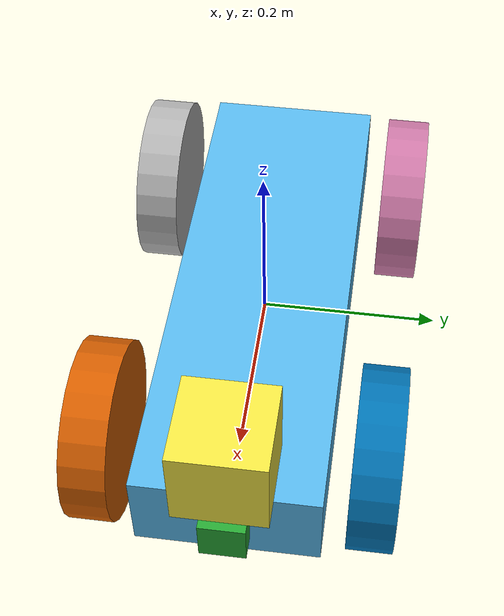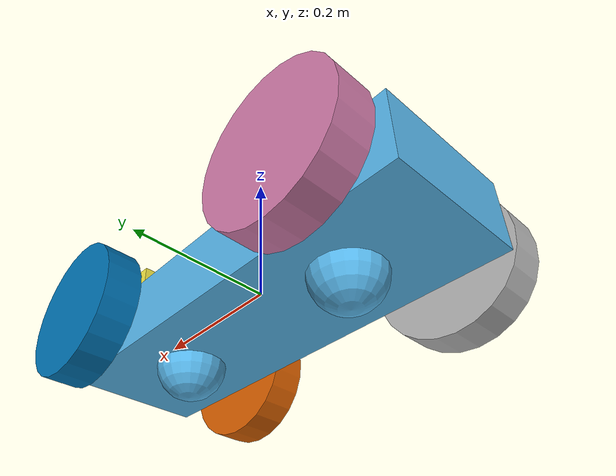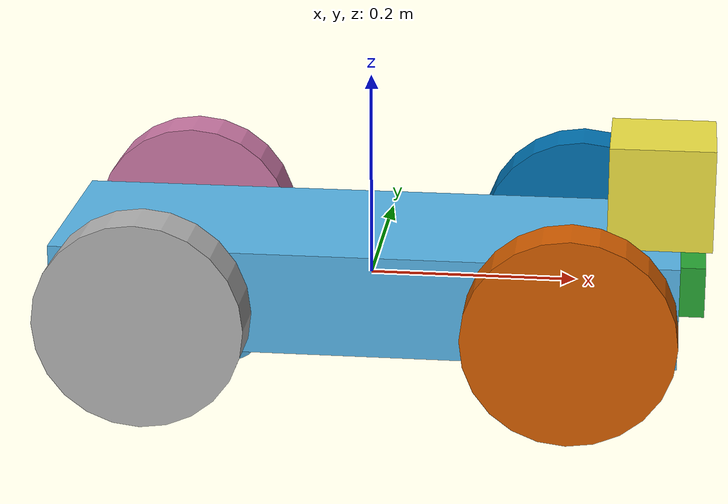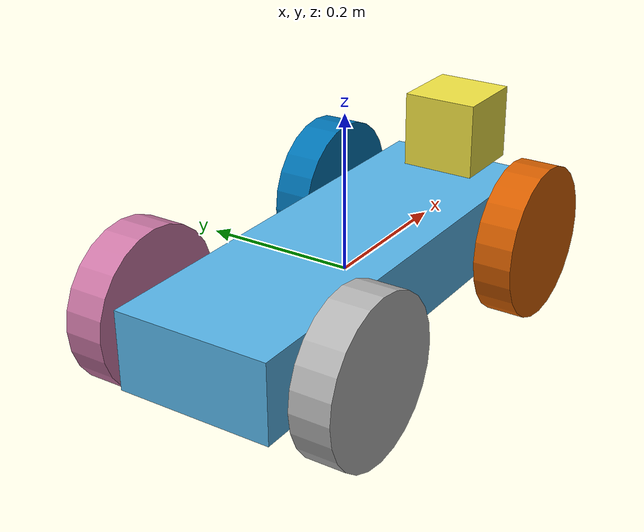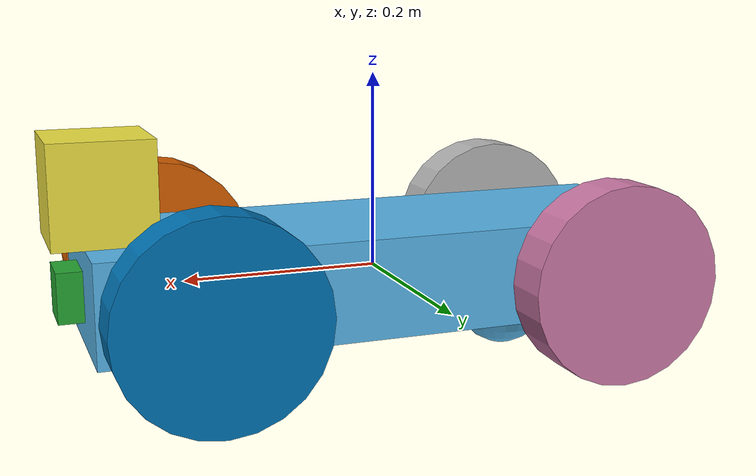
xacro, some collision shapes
<?xml version='1.0'?>
<robot name="my_bot" xmlns:xacro="http://www.ros.org/wiki/xacro">
<xacro:include filename="$(find udacity_bot)/urdf/my_bot.gazebo" />
<link name="robot_footprint" > </link>

<joint name="robot_footprint_joint" type="fixed">
    <parent link="robot_footprint"/>
    <child link="chassis"/>
    <origin xyz="0 0 0" rpy="0 0 0"/>
</joint>

<link name="chassis">
  <pose>0 0 0.1 0 0 0</pose>

<inertial>
	<mass value="15.0"/>
	<origin xyz="0.0 0 0" rpy=" 0 0 0"/>
	<inertia ixx="0.1" ixy="0" ixz="0" iyy="0.1" iyz="0" izz="0.1" />
</inertial>

<collision name='collision'> <origin xyz="0 0 0" rpy=" 0 0 0"/> <geometry> <box size=".6 .2 .1"/> </geometry>
</collision>

<visual name='chassis_visual'> <origin xyz="0 0 0" rpy=" 0 0 0"/> <geometry> <box size=".6 .2 .1"/> </geometry>
</visual>

<collision name='back_caster_collision'>
<origin xyz="-0.15 0 -0.05" rpy=" 0 0 0"/>
<geometry> <sphere radius="0.0495"/> </geometry>
<surface> <friction> <ode> <mu>0</mu> <mu2>0</mu2> <slip1>1.0</slip1> <slip2>1.0</slip2> </ode> </friction>
</surface>
</collision>

<visual name='back_caster_visual'> <origin xyz="-0.15 0 -0.05" rpy=" 0 0 0"/> <geometry> <sphere radius="0.0495"/>
</geometry> </visual>

<collision name='front_caster_collision'>
<origin xyz="0.15 0 -0.05" rpy=" 0 0 0"/>
<geometry>
<sphere radius="0.0495"/>
</geometry>
<surface> <friction> <ode> <mu>0</mu> <mu2>0</mu2> <slip1>1.0</slip1> <slip2>1.0</slip2> </ode> </friction>
</surface>
</collision>

<visual name='front_caster_visual'>
<origin xyz="0.15 0 -0.05" rpy=" 0 0 0"/>
<geometry> <sphere radius="0.0495"/> </geometry>
</visual>

</link>

<!-- CAMERA DEFINITION -->

  <link name="camera">
    <inertial>
      <mass value="0.1"/>
      <origin xyz="0 0 0" rpy=" 0 0 0"/>
      <inertia
          ixx="1e-6" ixy="0" ixz="0"
          iyy="1e-6" iyz="0"
          izz="1e-6"
      />
    </inertial>

    <collision name='camera_collision'>
      <origin xyz="0 0 0" rpy=" 0 0 0"/>
      <geometry>
        <box size=".05 0.05 0.05"/>
      </geometry>
    </collision>

    <visual name='camera_visual'>
      <origin xyz="0 0 0" rpy=" 0 0 0"/>
      <geometry>
        <box size=".05 0.05 0.05"/>
      </geometry>
    </visual>

  </link>

  <joint type="fixed" name="camera_joint">
    <origin xyz="0.3 0 0" rpy="0 0 0"/>
    <child link="camera"/>
    <parent link="chassis"/>
</joint>

<!-- LASER RANGEFINDER DEFINITION -->

  <link name="hokuyo">
    <inertial>
      <mass value="0.1"/>
      <origin xyz="0 0 0" rpy=" 0 0 0"/>
      <inertia
          ixx="1e-6" ixy="0" ixz="0"
          iyy="1e-6" iyz="0"
          izz="1e-6"
      />
    </inertial>

    <collision name='hokuyo_collision'>
      <origin xyz="0 0 0" rpy=" 0 0 0"/>
      <geometry>
        <box size=".1 0.1 0.1"/>
      </geometry>
    </collision>

    <visual name='hokuyo_visual'>
      <origin xyz="0 0 0" rpy=" 0 0 0"/>
      <geometry>
        <mesh filename="package://udacity_bot/meshes/hokuyo.dae"/>
      </geometry>
    </visual>
  </link>

  <joint type="fixed" name="hokuyo_joint">
    <origin xyz=".28 0 0.1" rpy="0 0 0"/>
    <child link="hokuyo"/>
    <parent link="chassis"/>
  </joint>

<!-- wheels start here! -->

  <link name='left_wheel'>
    <inertial>
      <mass value="5.0"/>
      <origin xyz="0 0 0" rpy=" 0 1.5707 1.5707"/>
      <inertia
          ixx="0.1" ixy="0" ixz="0"
          iyy="0.1" iyz="0"
          izz="0.1"
      />
    </inertial>

    <collision name='left_wheel_collision'>
      <origin xyz="0 0 0" rpy=" 0 1.5707 1.5707"/>
      <geometry>
        <cylinder radius=".1" length=".05"/>
      </geometry>
    </collision>

    <visual name='left_wheel_visual'>
      <origin xyz="0 0 0" rpy=" 0 1.5707 1.5707"/>
      <geometry>
        <cylinder radius=".1" length=".05"/>
      </geometry>
    </visual>

  </link>

  <joint type="continuous" name="left_wheel_hinge">
    <origin xyz="0.2 0.15 0" rpy="0 0 0"/>
    <child link="left_wheel"/>
    <parent link="chassis"/>
    <axis xyz="0 1 0" rpy="0 0 0"/>
    <limit effort="10000" velocity="1000"/>
    <joint_properties damping="1.0" friction="1.0"/>
  </joint>

<!-- RIGHT WHEEL -->

  <joint type="continuous" name="right_wheel_hinge">
    <origin xyz="0.2 -0.15 0" rpy="0 0 0"/>
    <parent link="chassis"/>
    <child link="right_wheel"/>
    <axis xyz="0 1 0" rpy="0 0 0"/>
    <limit effort="10000" velocity="1000"/>
    <joint_properties damping="1.0" friction="1.0"/>
  </joint>

  <link name="right_wheel">
    <inertial>
      <mass value="5.0"/>
      <origin xyz="0 0 0" rpy=" 0 1.5707 1.5707"/>
      <inertia
          ixx="0.1" ixy="0" ixz="0"
          iyy="0.1" iyz="0"
          izz="0.1"
      />
    </inertial>

    <collision name='right_wheel_collision'>
      <origin xyz="0 0 0" rpy=" 0 1.5707 1.5707"/>
      <geometry>
        <cylinder radius=".1" length=".05"/>
      </geometry>
    </collision>

    <visual name='right_wheel_visual'>
      <origin xyz="0 0 0" rpy=" 0 1.5707 1.5707"/>
      <geometry>
        <cylinder radius=".1" length=".05"/>
      </geometry>
    </visual>
  </link>

<!-- back wheels start here! -->

  <link name='left_wheel_back'>
    <inertial>
      <mass value="5.0"/>
      <origin xyz="0 0 0" rpy=" 0 1.5707 1.5707"/>
      <inertia
          ixx="0.1" ixy="0" ixz="0"
          iyy="0.1" iyz="0"
          izz="0.1"
      />
    </inertial>

    <collision name='left_wheel_collision_back'>
      <origin xyz="0 0 0" rpy=" 0 1.5707 1.5707"/>
      <geometry>
        <cylinder radius=".1" length=".05"/>
      </geometry>
    </collision>

    <visual name='left_wheel_visual_back'>
      <origin xyz="0 0 0" rpy=" 0 1.5707 1.5707"/>
      <geometry>
        <cylinder radius=".1" length=".05"/>
      </geometry>
    </visual>

  </link>

  <joint type="continuous" name="left_wheel_hinge_back">
    <origin xyz="-0.2 0.15 0" rpy="0 0 0"/>
    <child link="left_wheel_back"/>
    <parent link="chassis"/>
    <axis xyz="0 1 0" rpy="0 0 0"/>
    <limit effort="10000" velocity="1000"/>
    <joint_properties damping="1.0" friction="1.0"/>
  </joint>

<!-- RIGHT WHEEL -->

  <joint type="continuous" name="right_wheel_hinge_back">
    <origin xyz="-0.2 -0.15 0" rpy="0 0 0"/>
    <parent link="chassis"/>
    <child link="right_wheel_back"/>
    <axis xyz="0 1 0" rpy="0 0 0"/>
    <limit effort="10000" velocity="1000"/>
    <joint_properties damping="1.0" friction="1.0"/>
  </joint>

  <link name="right_wheel_back">
    <inertial>
      <mass value="5.0"/>
      <origin xyz="0 0 0" rpy=" 0 1.5707 1.5707"/>
      <inertia
          ixx="0.1" ixy="0" ixz="0"
          iyy="0.1" iyz="0"
          izz="0.1"
      />
    </inertial>

    <collision name='right_wheel_collision_back'>
      <origin xyz="0 0 0" rpy=" 0 1.5707 1.5707"/>
      <geometry>
        <cylinder radius=".1" length=".05"/>
      </geometry>
    </collision>

    <visual name='right_wheel_visual_back'>
      <origin xyz="0 0 0" rpy=" 0 1.5707 1.5707"/>
      <geometry>
        <cylinder radius=".1" length=".05"/>
      </geometry>
    </visual>
  </link>

</robot>
